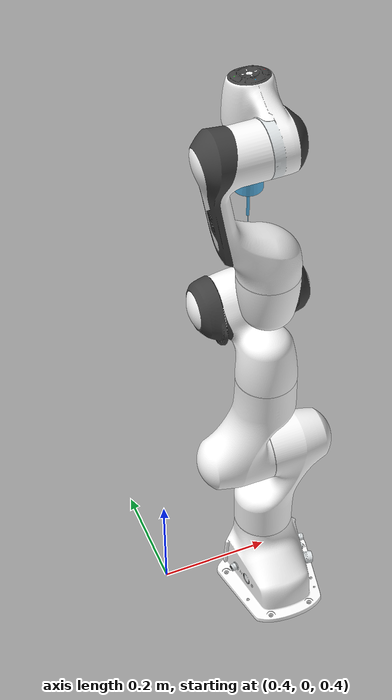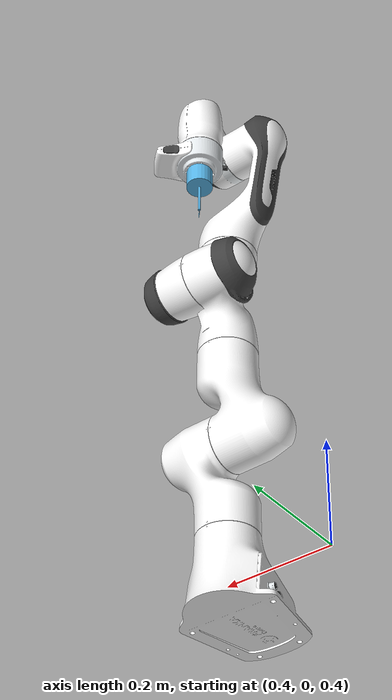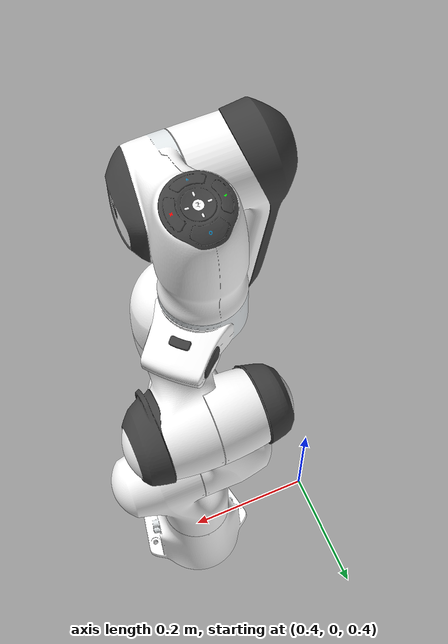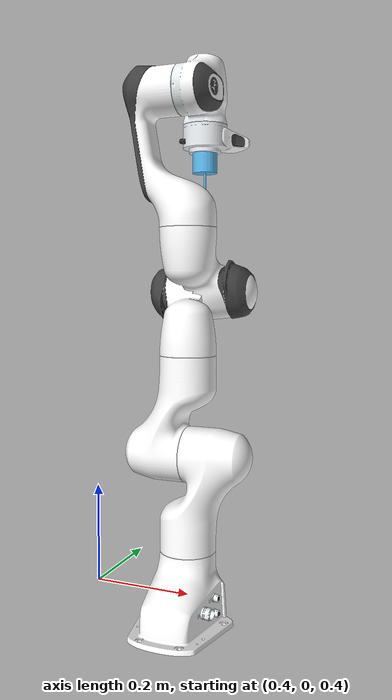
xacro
<?xml version="1.0" ?>
<robot name="panda" xmlns:xacro="http://www.ros.org/wiki/xacro">

  <!-- World Frame -->
  <link name="world"/>

  <!-- Link 0 - Base -->
  <link name="panda_link0">
    <visual>
      <geometry>
        <mesh filename="package://panda_description/meshes/visual/link0.dae"/>
      </geometry>
    </visual>
    <collision>
      <geometry>
        <mesh filename="package://panda_description/meshes/collision/link0.obj"/>
      </geometry>
    </collision>
      <inertial>
          <origin xyz="0 0 0" rpy="0.0 0.0 0.0"/>
          <mass value="0.1"/>
          <inertia ixx="0.1" ixy="0.0" ixz="0.0" iyy="0.1" iyz="0.0" izz="0.1"/>
      </inertial>
  </link>

  <!-- World-Base Joint -->
  <joint name="virtual_joint" type="fixed">
    <parent link="world"/>
    <child link="panda_link0"/>
    <origin xyz="0.6 0 0.35" rpy="0 0 1.57"/>
  </joint>

  <!-- Link 1 -->
  <link name="panda_link1">
    <visual>
      <geometry>
        <mesh filename="package://panda_description/meshes/visual/link1.dae"/>
      </geometry>
    </visual>
    <collision>
      <geometry>
        <mesh filename="package://panda_description/meshes/collision/link1.obj"/>
      </geometry>
    </collision>
        <inertial>
            <origin xyz="0 0 0" rpy="0.0 0.0 0.0"/>
            <mass value="0.1"/>
            <inertia ixx="0.1" ixy="0.0" ixz="0.0" iyy="0.1" iyz="0.0" izz="0.1"/>
        </inertial>
  </link>

  <!-- Joint 1 -->
  <joint name="panda_joint1" type="revolute">
    <safety_controller k_position="100.0" k_velocity="40.0" soft_lower_limit="-2.8973" soft_upper_limit="2.8973"/>
    <origin rpy="0 0 0" xyz="0 0 0.333"/>
    <parent link="panda_link0"/>
    <child link="panda_link1"/>
    <axis xyz="0 0 1"/>
    <limit effort="30.0" lower="-2.9671" upper="2.9671" velocity="10.0"/>
  </joint>

  <!-- Link 2 -->
  <link name="panda_link2">
    <visual>
      <geometry>
        <mesh filename="package://panda_description/meshes/visual/link2.dae"/>
      </geometry>
    </visual>
    <collision>
      <geometry>
        <mesh filename="package://panda_description/meshes/collision/link2.obj"/>
      </geometry>
    </collision>
        <inertial>
          <origin xyz="0 0 0" rpy="0.0 0.0 0.0"/>
          <mass value="0.1"/>
          <inertia ixx="0.1" ixy="0.0" ixz="0.0" iyy="0.1" iyz="0.0" izz="0.1"/>
      </inertial>
  </link>

  <!-- Joint 2 -->
  <joint name="panda_joint2" type="revolute">
    <safety_controller k_position="100.0" k_velocity="40.0" soft_lower_limit="-1.7628" soft_upper_limit="1.7628"/>
    <origin rpy="-1.57079632679 0 0" xyz="0 0 0"/>
    <parent link="panda_link1"/>
    <child link="panda_link2"/>
    <axis xyz="0 0 1"/>
    <limit effort="30.0" lower="-1.8326" upper="1.8326" velocity="10.0"/>
  </joint>

  <!-- Link 3 -->
  <link name="panda_link3">
    <visual>
      <geometry>
        <mesh filename="package://panda_description/meshes/visual/link3.dae"/>
      </geometry>
    </visual>
    <collision>
      <geometry>
        <mesh filename="package://panda_description/meshes/collision/link3.obj"/>
      </geometry>
    </collision>
      <inertial>
          <origin xyz="0 0 0" rpy="0.0 0.0 0.0"/>
          <mass value="0.1"/>
          <inertia ixx="0.1" ixy="0.0" ixz="0.0" iyy="0.1" iyz="0.0" izz="0.1"/>
      </inertial>
  </link>

  <!-- Joint 3 -->
  <joint name="panda_joint3" type="revolute">
    <safety_controller k_position="100.0" k_velocity="40.0" soft_lower_limit="-2.8973" soft_upper_limit="2.8973"/>
    <origin rpy="1.57079632679 0 0" xyz="0 -0.316 0"/>
    <parent link="panda_link2"/>
    <child link="panda_link3"/>
    <axis xyz="0 0 1"/>
    <limit effort="30.0" lower="-2.9671" upper="2.9671" velocity="10.0"/>
  </joint>

  <!-- Link 4 -->
  <link name="panda_link4">
    <visual>
      <geometry>
        <mesh filename="package://panda_description/meshes/visual/link4.dae"/>
      </geometry>
    </visual>
    <collision>
      <geometry>
        <mesh filename="package://panda_description/meshes/collision/link4.obj"/>
      </geometry>
    </collision>
      <inertial>
          <origin xyz="0 0 0" rpy="0.0 0.0 0.0"/>
          <mass value="0.1"/>
          <inertia ixx="0.1" ixy="0.0" ixz="0.0" iyy="0.1" iyz="0.0" izz="0.1"/>
      </inertial>
  </link>

  <!-- Joint 4 -->
  <joint name="panda_joint4" type="revolute">
    <safety_controller k_position="100.0" k_velocity="40.0" soft_lower_limit="-3.0718" soft_upper_limit="-0.0698"/>
    <origin rpy="1.57079632679 0 0" xyz="0.0825 0 0"/>
    <parent link="panda_link3"/>
    <child link="panda_link4"/>
    <axis xyz="0 0 1"/>
    <limit effort="30.0" lower="-3.1416" upper="0.0" velocity="10.0"/>
  </joint>

  <!-- Link 5 -->
  <link name="panda_link5">
    <visual>
      <geometry>
        <mesh filename="package://panda_description/meshes/visual/link5.dae"/>
      </geometry>
    </visual>
    <collision>
      <geometry>
        <mesh filename="package://panda_description/meshes/collision/link5.obj"/>
      </geometry>
    </collision>
      <inertial>
          <origin xyz="0 0 0" rpy="0.0 0.0 0.0"/>
          <mass value="0.1"/>
          <inertia ixx="0.1" ixy="0.0" ixz="0.0" iyy="0.1" iyz="0.0" izz="0.1"/>
      </inertial>
  </link>

  <!-- Joint 5 -->
  <joint name="panda_joint5" type="revolute">
    <safety_controller k_position="100.0" k_velocity="40.0" soft_lower_limit="-2.8973" soft_upper_limit="2.8973"/>
    <origin rpy="-1.57079632679 0 0" xyz="-0.0825 0.384 0"/>
    <parent link="panda_link4"/>
    <child link="panda_link5"/>
    <axis xyz="0 0 1"/>
    <limit effort="30.0" lower="-2.9671" upper="2.9671" velocity="10.0"/>
  </joint>

  <!-- Link 6 -->
  <link name="panda_link6">
    <visual>
      <geometry>
        <mesh filename="package://panda_description/meshes/visual/link6.dae"/>
      </geometry>
    </visual>
    <collision>
      <geometry>
        <mesh filename="package://panda_description/meshes/collision/link6.obj"/>
      </geometry>
    </collision>
      <inertial>
          <origin xyz="0 0 0" rpy="0.0 0.0 0.0"/>
          <mass value="0.1"/>
          <inertia ixx="0.1" ixy="0.0" ixz="0.0" iyy="0.1" iyz="0.0" izz="0.1"/>
      </inertial>
  </link>

  <!-- Joint 6 -->
  <joint name="panda_joint6" type="revolute">
    <safety_controller k_position="100.0" k_velocity="40.0" soft_lower_limit="-0.0175" soft_upper_limit="3.7525"/>
    <origin rpy="1.57079632679 0 0" xyz="0 0 0"/>
    <parent link="panda_link5"/>
    <child link="panda_link6"/>
    <axis xyz="0 0 1"/>
    <limit effort="30.0" lower="-0.0873" upper="3.8223" velocity="10.0"/>
  </joint>

  <!-- Link 7 -->
  <link name="panda_link7">
    <visual>
      <geometry>
        <mesh filename="package://panda_description/meshes/visual/link7.dae"/>
      </geometry>
    </visual>
    <collision>
      <geometry>
        <mesh filename="package://panda_description/meshes/collision/link7.obj"/>
      </geometry>
    </collision>
      <inertial>
          <origin xyz="0 0 0" rpy="0.0 0.0 0.0"/>
          <mass value="0.1"/>
          <inertia ixx="0.1" ixy="0.0" ixz="0.0" iyy="0.1" iyz="0.0" izz="0.1"/>
      </inertial>
  </link>

  <!-- Joint 7 -->
  <joint name="panda_joint7" type="revolute">
    <safety_controller k_position="100.0" k_velocity="40.0" soft_lower_limit="-2.8973" soft_upper_limit="2.8973"/>
    <origin rpy="1.57079632679 0 0" xyz="0.088 0 0"/>
    <parent link="panda_link6"/>
    <child link="panda_link7"/>
    <axis xyz="0 0 1"/>
    <limit effort="30.0" lower="-2.9671" upper="2.9671" velocity="10.0"/>
  </joint>

  <!-- Tool Link: simple probe (two cylinders) -->
  <link name="panda_tool">
    <visual>
      <origin xyz="0 0 0.02" rpy="0 0 0"/>
      <geometry>
        <cylinder radius="0.025" length="0.04"/>
      </geometry>
    </visual>
    <visual>
      <origin xyz="0 0 0.05" rpy="0 0 0"/>
      <geometry>
        <cylinder radius="0.0025" length="0.1"/>
      </geometry>
    </visual>
    <visual>
      <origin xyz="0 0 0.11" rpy="0 0 0"/>
      <geometry>
        <cylinder radius="0.0005" length="0.02"/>
      </geometry>
    </visual>
    <collision>
      <origin xyz="0 0 0.02" rpy="0 0 0"/>
      <geometry>
        <cylinder radius="0.025" length="0.04"/>
      </geometry>
    </collision>
    <collision>
      <origin xyz="0 0 0.05" rpy="0 0 0"/>
      <geometry>
        <cylinder radius="0.0025" length="0.1"/>
      </geometry>
    </collision>
    <collision>
      <origin xyz="0 0 0.11" rpy="0 0 0"/>
      <geometry>
        <cylinder radius="0.0005" length="0.02"/>
      </geometry>
    </collision>
    <inertial>
      <origin xyz="0 0 0.04" rpy="0 0 0"/>
      <mass value="0.05"/>
      <inertia ixx="0.0001" ixy="0.0" ixz="0.0" iyy="0.0001" iyz="0.0" izz="0.0001"/>
    </inertial>
  </link>

<gazebo reference="panda_tool">
  <material>
    <pbr>
      <metal>
        <albedo>0.7 0.7 0.75 1</albedo>
        <metalness>1.0</metalness>
        <roughness>0.2</roughness>
      </metal>
    </pbr>
  </material>
</gazebo>

  <!-- Tool joint at flange -->
  <joint name="panda_tool_joint" type="fixed">
    <parent link="panda_link7"/>
    <child link="panda_tool"/>
    <origin rpy="0 0 0" xyz="0 0 0.106"/>
  </joint>

  <!-- TCP frame at the probe tip -->
  <link name="panda_tcp">
    <inertial>
      <mass value="0.01"/>
      <inertia ixx="0.0001" ixy="0" ixz="0" iyy="0.0001" iyz="0" izz="0.0001"/>
    </inertial>
  </link>
  <joint name="panda_tcp_joint" type="fixed">
    <parent link="panda_tool"/>
    <child link="panda_tcp"/>
    <origin rpy="0 0 0" xyz="0 0 0.12"/>
  </joint>

  <link name="panda_lidar_frame">
  <inertial>
    <mass value="0.001"/>
    <inertia ixx="0.00001" ixy="0" ixz="0" iyy="0.00001" iyz="0" izz="0.00001"/>
  </inertial>
</link>

<joint name="panda_lidar_joint" type="fixed">
  <parent link="panda_tcp"/>
  <child link="panda_lidar_frame"/>
  <origin rpy="0 -1.570796 0" xyz="0 0 0"/>
</joint>

</robot>
